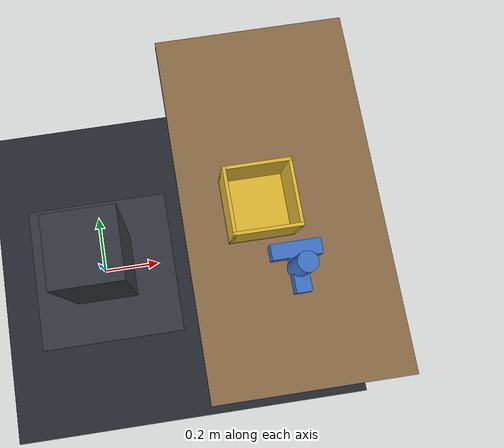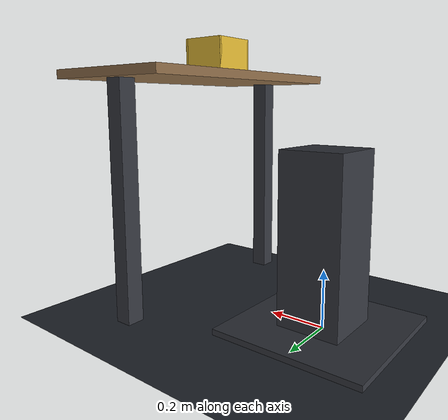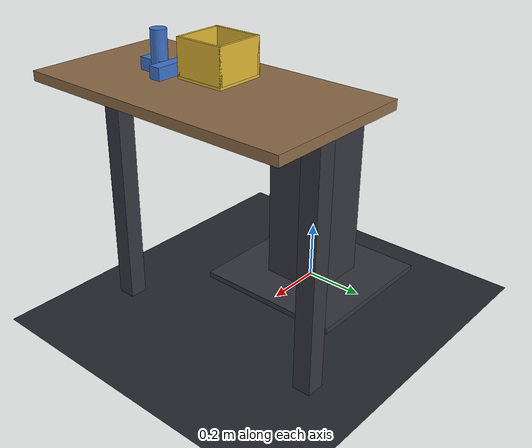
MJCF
<mujoco model="ALLEX game level0 physics-only">
  <!-- GENERATED by tools/make_physics_only.py -- do not edit.
       Visual geoms and their mesh assets stripped; collision only. -->

  <include file="ALLEX_slim.xml"/>

  <option gravity="0 0 -9.81" timestep="0.0041667"/>

  <size memory="32M"/>

  <statistic center="0.15 0 0.95" extent="1.5"/>

  <visual>
    <headlight diffuse="0.55 0.55 0.55" ambient="0.35 0.35 0.35" specular="0.1 0.1 0.1"/>
    <rgba haze="0.13 0.17 0.22 1"/>
    <global azimuth="140" elevation="-18" offwidth="1600" offheight="1200"/>
    <quality shadowsize="4096"/>
    <map shadowclip="2.0"/>
  </visual>

  <asset>
    <texture type="skybox" builtin="gradient" rgb1="0.22 0.28 0.36"
             rgb2="0.03 0.04 0.06" width="512" height="3072"/>
    <texture type="2d" name="floor_tex" builtin="checker" mark="edge"
             rgb1="0.17 0.19 0.22" rgb2="0.12 0.14 0.16"
             markrgb="0.35 0.37 0.40" width="300" height="300"/>
    <material name="floor_mat" texture="floor_tex" texuniform="true"
              texrepeat="6 6" reflectance="0.08"/>
    <material name="mount_mat" rgba="0.20 0.21 0.24 1" reflectance="0.05"/>
    <material name="bench_mat" rgba="0.55 0.42 0.28 1" reflectance="0.02"/>
    <material name="prop_red" rgba="0.82 0.28 0.22 1"/>
    <material name="prop_blue" rgba="0.24 0.45 0.78 1"/>
    <material name="prop_green" rgba="0.32 0.62 0.36 1"/>
    <material name="prop_yellow" rgba="0.88 0.72 0.20 1"/>
  </asset>

  <default>
    <default class="prop">
      <!-- 7/7 so props collide with every hand geom, including the thumb
           proximal link's non-default contype=2/conaffinity=4 -->
      <geom contype="7" conaffinity="7" friction="0.7 0.02 0.001"
            solimp="0.999 0.9999 0.0001" solref="0.004 1" condim="4"/>
    </default>
    <default class="static">
      <geom type="box" contype="7" conaffinity="7" friction="0.7 0.02 0.001"/>
    </default>
    <!-- Shared tuning for every frozen joint. solref timeconst must stay
         >= 2*timestep (0.002) or the constraint rings; 0.004 is the tightest
         stable value measured here. -->
    <default class="frozen">
      <equality solref="0.004 1" solimp="0.99 0.9999 0.001"/>
    </default>
  </default>

  <worldbody>
    <light pos="0.6 0.4 2.8" dir="-0.2 -0.15 -1" directional="true"
           diffuse="0.5 0.5 0.5" specular="0.15 0.15 0.15" castshadow="true"/>
    <light pos="-0.8 -0.8 2.2" dir="0.3 0.3 -1" directional="true"
           diffuse="0.18 0.18 0.22" castshadow="false"/>

    <geom name="floor" pos="0 0 0" size="0 0 0.05" type="plane"
          material="floor_mat" contype="7" conaffinity="7"/>

    <body name="mount" pos="0 0 0.3">
      <geom class="static" name="mount_column" size="0.11 0.11 0.3"
            material="mount_mat"/>
      <geom class="static" name="mount_foot" pos="0 0 -0.29"
            size="0.26 0.26 0.01" material="mount_mat"/>
    </body>

    <!-- Work surface in front of the robot (+x is forward; the head cameras
         sit at +x offsets). Top face at z = 0.15. -->
    <body name="bench" pos="0.52 0 0.7">
      <geom class="static" name="bench_top" pos="0 0 0.135"
            size="0.24 0.45 0.015" material="bench_mat"/>
      <geom class="static" name="bench_leg_l" pos="0 0.38 -0.28"
            size="0.03 0.03 0.4" material="mount_mat"/>
      <geom class="static" name="bench_leg_r" pos="0 -0.38 -0.28"
            size="0.03 0.03 0.4" material="mount_mat"/>
    </body>

    <body name="prop_cylinder" pos="0.53 -0.17 0.9130">
      <freejoint name="prop_cylinder_free"/>
      <geom class="prop" name="prop_cylinder_g" type="cylinder"
            size="0.024 0.0625" mass="0.10" material="prop_blue"/>
    </body>

    <body name="prop_tblock" pos="0.53 -0.17 0.86875">
      <freejoint name="prop_tblock_free"/>
      <geom class="prop" name="prop_tblock_bar" type="box"
            size="0.060 0.01875 0.01875" pos="0 0.04125 0"
            mass="0.100" material="prop_blue"/>
      <geom class="prop" name="prop_tblock_stem" type="box"
            size="0.01875 0.04125 0.01875" pos="0 -0.01875 0"
            mass="0.075" material="prop_blue"/>
    </body>

    <body name="prop_bin" pos="0.46 -0.01 0.8505">
      <freejoint name="prop_bin_free"/>
      <!-- Origin is the underside of the floor, so pos z = bench top exactly.
           Corner overlap between the walls is harmless: same body, so MuJoCo
           excludes those pairs automatically. -->
      <geom class="prop" name="prop_bin_floor" type="box"
            size="0.0795 0.0795 0.004" pos="0 0 0.004"
            mass="0.20" material="prop_yellow"/>
      <geom class="prop" name="prop_bin_wall_px" type="box"
            size="0.004 0.0795 0.055" pos="0.0755 0 0.063"
            mass="0.075" material="prop_yellow"/>
      <geom class="prop" name="prop_bin_wall_nx" type="box"
            size="0.004 0.0795 0.055" pos="-0.0755 0 0.063"
            mass="0.075" material="prop_yellow"/>
      <geom class="prop" name="prop_bin_wall_py" type="box"
            size="0.0795 0.004 0.055" pos="0 0.0755 0.063"
            mass="0.075" material="prop_yellow"/>
      <geom class="prop" name="prop_bin_wall_ny" type="box"
            size="0.0795 0.004 0.055" pos="0 -0.0755 0.063"
            mass="0.075" material="prop_yellow"/>
    </body>

    <!-- Spectator cameras. mode="targetbody" aims them automatically, which is
         far less error-prone than hand-computing xyaxes. -->
    <camera name="game_front" pos="1.9 0 1.35"
            mode="targetbody" target="Chest_Origin_Link"/>
    <camera name="game_over_shoulder" pos="-0.75 0.85 1.95"
            mode="targetbody" target="Chest_Origin_Link"/>
    <camera name="game_bench" pos="1.15 0.30 1.28"
            mode="targetbody" target="bench"/>
  </worldbody>

  <equality>
    <joint class="frozen" joint1="Neck_Pitch_Joint" polycoef="0.5235988 0 0 0 0"/>
    <joint class="frozen" joint1="Neck_Yaw_Joint" polycoef="0 0 0 0 0"/>

    <joint class="frozen" joint1="Waist_Yaw_Joint" polycoef="0 0 0 0 0"/>
    <joint class="frozen" joint1="Waist_Lower_Pitch_Joint" polycoef="0 0 0 0 0"/>
    <joint class="frozen" joint1="Waist_Upper_Pitch_Joint" polycoef="0 0 0 0 0"/>
    <joint class="frozen" joint1="Waist_Pitch_Dummy_Joint" polycoef="0 0 0 0 0"/>

    <joint class="frozen" joint1="L_Shoulder_Pitch_Joint" polycoef="0 0 0 0 0"/>
    <joint class="frozen" joint1="L_Shoulder_Roll_Joint" polycoef="0 0 0 0 0"/>
    <joint class="frozen" joint1="L_Shoulder_Yaw_Joint" polycoef="0 0 0 0 0"/>
    <joint class="frozen" joint1="L_Elbow_Joint" polycoef="0 0 0 0 0"/>
    <joint class="frozen" joint1="L_Wrist_Yaw_Joint" polycoef="0 0 0 0 0"/>
    <joint class="frozen" joint1="L_Wrist_Roll_Joint" polycoef="0 0 0 0 0"/>
    <joint class="frozen" joint1="L_Wrist_Pitch_Joint" polycoef="0 0 0 0 0"/>

    <joint class="frozen" joint1="L_Thumb_Yaw_Joint" polycoef="0 0 0 0 0"/>
    <joint class="frozen" joint1="L_Thumb_CMC_Joint" polycoef="0 0 0 0 0"/>
    <joint class="frozen" joint1="L_Thumb_MCP_Joint" polycoef="0 0 0 0 0"/>
    <joint class="frozen" joint1="L_Index_ABAD_Joint" polycoef="0 0 0 0 0"/>
    <joint class="frozen" joint1="L_Index_MCP_Joint" polycoef="0 0 0 0 0"/>
    <joint class="frozen" joint1="L_Index_PIP_Joint" polycoef="0 0 0 0 0"/>
    <joint class="frozen" joint1="L_Middle_ABAD_Joint" polycoef="0 0 0 0 0"/>
    <joint class="frozen" joint1="L_Middle_MCP_Joint" polycoef="0 0 0 0 0"/>
    <joint class="frozen" joint1="L_Middle_PIP_Joint" polycoef="0 0 0 0 0"/>
    <joint class="frozen" joint1="L_Ring_ABAD_Joint" polycoef="0 0 0 0 0"/>
    <joint class="frozen" joint1="L_Ring_MCP_Joint" polycoef="0 0 0 0 0"/>
    <joint class="frozen" joint1="L_Ring_PIP_Joint" polycoef="0 0 0 0 0"/>
    <joint class="frozen" joint1="L_Little_ABAD_Joint" polycoef="0 0 0 0 0"/>
    <joint class="frozen" joint1="L_Little_MCP_Joint" polycoef="0 0 0 0 0"/>
    <joint class="frozen" joint1="L_Little_PIP_Joint" polycoef="0 0 0 0 0"/>

    <!-- Coupled dependents, each held at its coupling's polycoef[0]. -->
    <joint class="frozen" joint1="L_Thumb_IP_Joint" polycoef="-0.0015 0 0 0 0"/>
    <joint class="frozen" joint1="L_Index_DIP_Joint" polycoef="-0.003849 0 0 0 0"/>
    <joint class="frozen" joint1="L_Middle_DIP_Joint" polycoef="-0.003849 0 0 0 0"/>
    <joint class="frozen" joint1="L_Ring_DIP_Joint" polycoef="-0.003849 0 0 0 0"/>
    <joint class="frozen" joint1="L_Little_DIP_Joint" polycoef="-0.003849 0 0 0 0"/>
  </equality>

  <contact>
    <exclude body1="mount" body2="Base_Link"/>
    <exclude body1="mount" body2="Waist_Yaw_Link"/>
    <exclude body1="mount" body2="Waist_Lower_Pitch_Link"/>
    <exclude body1="mount" body2="Waist_Upper_Pitch_Link"/>

    <exclude body1="Neck_Yaw_Link" body2="L_Shoulder_Pitch_Link"/>
    <exclude body1="Neck_Yaw_Link" body2="R_Shoulder_Pitch_Link"/>
  </contact>
</mujoco>
